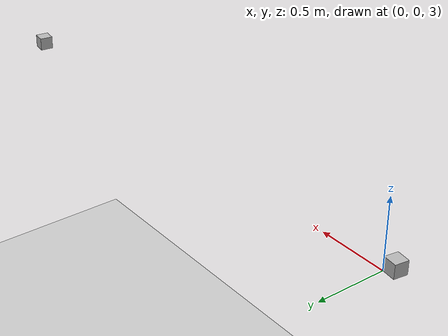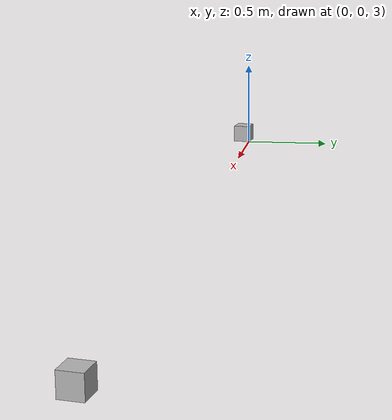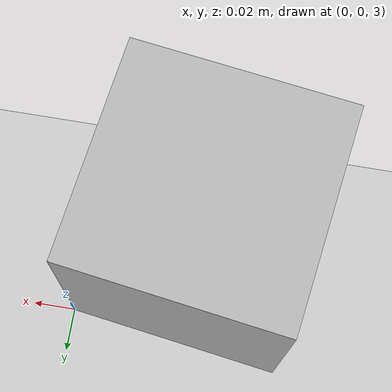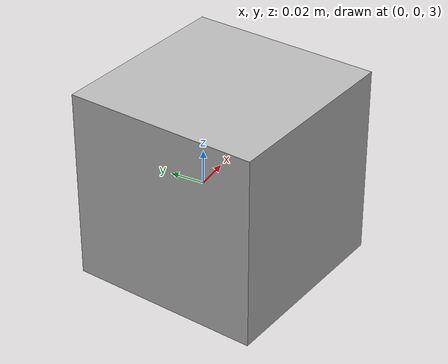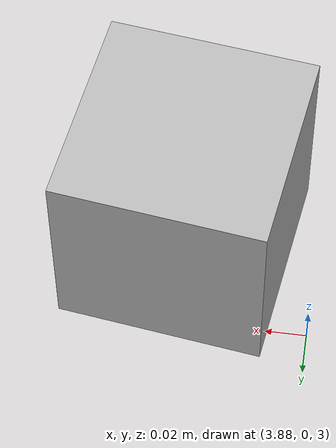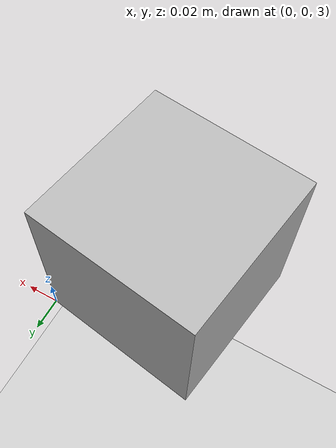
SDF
<?xml version="1.0" ?>
<sdf version="1.6">
  <world name="sensors">
    <physics name="1ms" type="ignored">
      <max_step_size>0.001</max_step_size>
      <real_time_factor>1.0</real_time_factor>
    </physics>
    <plugin
      filename="gz-sim-physics-system"
      name="gz::sim::systems::Physics">
    </plugin>
    <plugin
      filename="gz-sim-uwb-system"
      name="gz::sim::systems::Uwb">
    </plugin>
    <plugin
      filename="gz-sim-user-commands-system"
      name="gz::sim::systems::UserCommands">
    </plugin>
    <plugin
      filename="gz-sim-scene-broadcaster-system"
      name="gz::sim::systems::SceneBroadcaster">
    </plugin>

    <light type="directional" name="sun">
      <cast_shadows>true</cast_shadows>
      <pose>0 0 10 0 0 0</pose>
      <diffuse>0.8 0.8 0.8 1</diffuse>
      <specular>0.2 0.2 0.2 1</specular>
      <attenuation>
        <range>1000</range>
        <constant>0.9</constant>
        <linear>0.01</linear>
        <quadratic>0.001</quadratic>
      </attenuation>
      <direction>-0.5 0.1 -0.9</direction>
    </light>

    <model name="ground_plane">
      <static>true</static>
      <link name="link">
        <collision name="collision">
          <geometry>
            <plane>
              <normal>0 0 1</normal>
              <size>100 100</size>
            </plane>
          </geometry>
        </collision>
        <visual name="visual">
          <geometry>
            <plane>
              <normal>0 0 1</normal>
              <size>100 100</size>
            </plane>
          </geometry>
          <material>
            <ambient>0.8 0.8 0.8 1</ambient>
            <diffuse>0.8 0.8 0.8 1</diffuse>
            <specular>0.8 0.8 0.8 1</specular>
          </material>
        </visual>
      </link>
    </model>

    <model name="sensors_box_controller">
      <pose>4 0 3.0 0 0.0 3.0</pose>
      <link name="link">
        <pose>0.05 0.05 0.05 0 0 0</pose>
        <inertial>
          <mass>0.1</mass>
          <inertia>
            <ixx>0.000166667</ixx>
            <iyy>0.000166667</iyy>
            <izz>0.000166667</izz>
          </inertia>
        </inertial>
        <collision name="collision">
          <geometry>
            <box>
              <size>0.1 0.1 0.1</size>
            </box>
          </geometry>
        </collision>
        <visual name="visual">
          <geometry>
            <box>
              <size>0.1 0.1 0.1</size>
            </box>
          </geometry>
        </visual>

        <sensor name="controller" type="uwb">
          <always_on>1</always_on>
          <update_rate>100</update_rate>
          <visualize>true</visualize>
          <topic>uwb</topic>
          <enable_metrics>true</enable_metrics>
        </sensor>
      </link>
    </model>

    <model name="sensors_box_controlee">
      <pose>0 0.0 3.0 0 0.0 3.0</pose>
      <link name="link">
        <pose>0.05 0.05 0.05 0 0 0</pose>
        <inertial>
          <mass>0.1</mass>
          <inertia>
            <ixx>0.000166667</ixx>
            <iyy>0.000166667</iyy>
            <izz>0.000166667</izz>
          </inertia>
        </inertial>
        <collision name="collision">
          <geometry>
            <box>
              <size>0.1 0.1 0.1</size>
            </box>
          </geometry>
        </collision>
        <visual name="visual">
          <geometry>
            <box>
              <size>0.1 0.1 0.1</size>
            </box>
          </geometry>
        </visual>

        <sensor name="controlee" type="uwb">
          <always_on>1</always_on>
          <update_rate>100</update_rate>
          <visualize>true</visualize>
          <topic>uwb</topic>
          <enable_metrics>true</enable_metrics>
        </sensor>
      </link>
    </model>

  </world>
</sdf>
